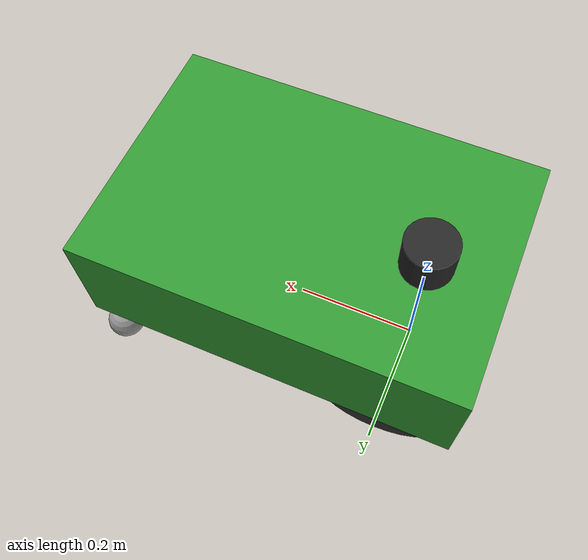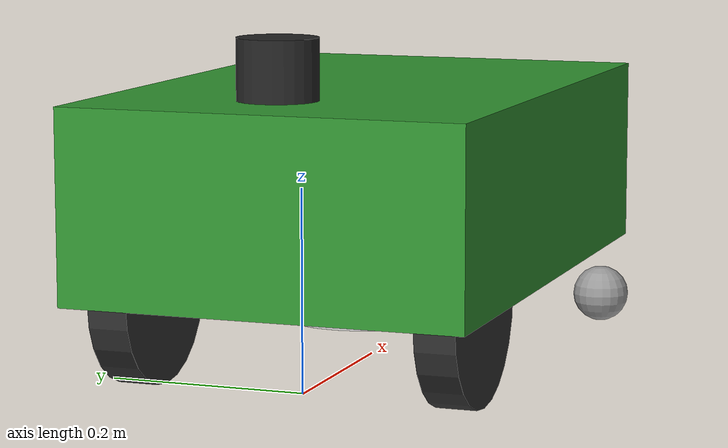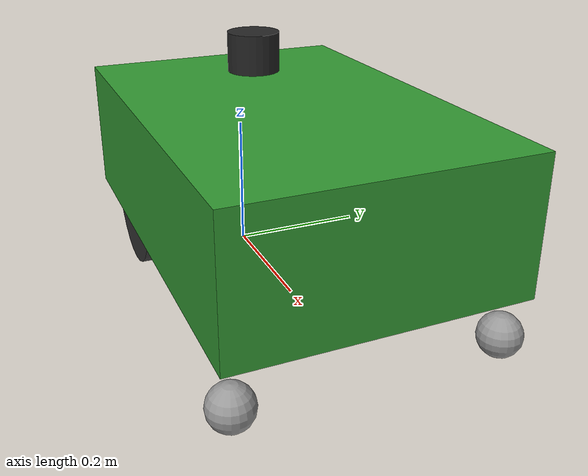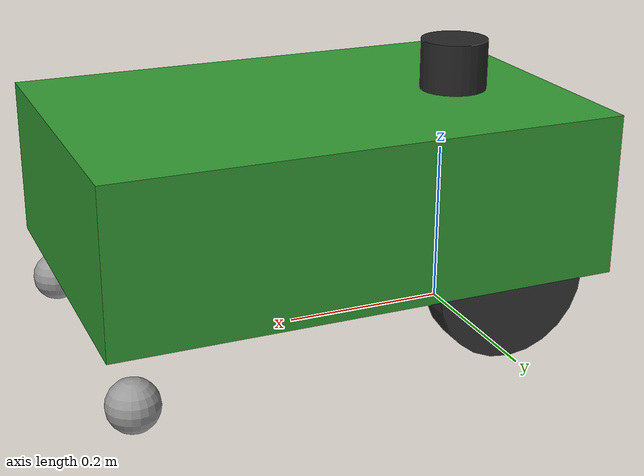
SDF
<?xml version="1.0"?>
<sdf version="1.9">
  <model name="mowgli_mower">
    <pose>0 0 0.093 0 0 0</pose>

    <!-- ==============================================================
         BASE LINK — chassis body
         ============================================================== -->
    <link name="base_link">
      <inertial>
        <mass>8.76</mass>
        <!-- Box inertia: m/12 * (y^2+z^2), etc. for 0.54×0.40×0.19 -->
        <inertia>
          <ixx>0.1459</ixx>
          <ixy>0</ixy>
          <ixz>0</ixz>
          <iyy>0.2891</iyy>
          <iyz>0</iyz>
          <izz>0.3796</izz>
        </inertia>
      </inertial>

      <!-- Chassis visual — green
           visibility_flags 0x0001: invisible to LiDAR (mask 0xFFFF0000) -->
      <visual name="chassis_visual">
        <pose>0.18 0 0.095 0 0 0</pose>
        <geometry>
          <box><size>0.60 0.40 0.19</size></box>
        </geometry>
        <material>
          <ambient>0.18 0.55 0.18 1</ambient>
          <diffuse>0.20 0.60 0.20 1</diffuse>
          <specular>0.1 0.3 0.1 1</specular>
        </material>
        <visibility_flags>0x0001</visibility_flags>
      </visual>

      <!-- Chassis collision -->
      <collision name="chassis_collision">
        <pose>0.18 0 0.095 0 0 0</pose>
        <geometry>
          <box><size>0.60 0.40 0.19</size></box>
        </geometry>
        <surface>
          <friction>
            <ode><mu>0.6</mu><mu2>0.6</mu2></ode>
          </friction>
        </surface>
      </collision>

      <!-- IMU sensor embedded in base_link -->
      <sensor name="imu_sensor" type="imu">
        <pose>0.18 0 0.095 0 0 0</pose>
        <always_on>true</always_on>
        <update_rate>100</update_rate>
        <visualize>false</visualize>
        <topic>/imu/data_raw</topic>
        <!-- Match the URDF frame for EKF TF lookups -->
        <gz_frame_id>imu_link</gz_frame_id>
        <imu>
          <angular_velocity>
            <x>
              <noise type="gaussian">
                <mean>0.0</mean><stddev>0.0</stddev>
                <bias_mean>0.0</bias_mean><bias_stddev>0.0</bias_stddev>
              </noise>
            </x>
            <y>
              <noise type="gaussian">
                <mean>0.0</mean><stddev>0.0</stddev>
                <bias_mean>0.0</bias_mean><bias_stddev>0.0</bias_stddev>
              </noise>
            </y>
            <z>
              <noise type="gaussian">
                <mean>0.0</mean><stddev>0.0</stddev>
                <bias_mean>0.0</bias_mean><bias_stddev>0.0</bias_stddev>
              </noise>
            </z>
          </angular_velocity>
          <linear_acceleration>
            <x>
              <noise type="gaussian">
                <mean>0.0</mean><stddev>0.0</stddev>
                <bias_mean>0.0</bias_mean><bias_stddev>0.0</bias_stddev>
              </noise>
            </x>
            <y>
              <noise type="gaussian">
                <mean>0.0</mean><stddev>0.0</stddev>
                <bias_mean>0.0</bias_mean><bias_stddev>0.0</bias_stddev>
              </noise>
            </y>
            <z>
              <noise type="gaussian">
                <mean>0.0</mean><stddev>0.0</stddev>
                <bias_mean>0.0</bias_mean><bias_stddev>0.0</bias_stddev>
              </noise>
            </z>
          </linear_acceleration>
          <orientation_reference_frame>
            <localization>GRAV_UP</localization>
          </orientation_reference_frame>
        </imu>
      </sensor>

      <!-- GPS / NavSat sensor -->
      <sensor name="navsat_sensor" type="navsat">
        <pose>0 0 0.20 0 0 0</pose>
        <always_on>true</always_on>
        <update_rate>5</update_rate>
        <topic>/gps/fix</topic>
        <!-- Match production frame for GPS pose processing -->
        <gz_frame_id>gps_link</gz_frame_id>
        <navsat>
          <position_sensing>
            <horizontal>
              <noise type="gaussian">
                <!-- RTK-fixed: ~2cm accuracy → ~1.8e-7 degrees.
                     Zeroed during fusion_graph debugging — restore
                     once baseline is clean. -->
                <mean>0.0</mean><stddev>0.0</stddev>
              </noise>
            </horizontal>
            <vertical>
              <noise type="gaussian">
                <mean>0.0</mean><stddev>0.0</stddev>
              </noise>
            </vertical>
          </position_sensing>
        </navsat>
      </sensor>
    </link>

    <link name="left_wheel">
      <pose>0 0.1625 0 0 0 0</pose>
      <inertial>
        <mass>0.5</mass>
        <inertia>
          <ixx>0.001148</ixx>
          <ixy>0</ixy>
          <ixz>0</ixz>
          <iyy>0.00216</iyy>
          <iyz>0</iyz>
          <izz>0.001148</izz>
        </inertia>
      </inertial>
      <visual name="visual">
        <pose>0 0 0 1.5708 0 0</pose>
        <geometry>
          <cylinder><radius>0.093</radius><length>0.04</length></cylinder>
        </geometry>
        <material>
          <ambient>0.2 0.2 0.2 1</ambient>
          <diffuse>0.2 0.2 0.2 1</diffuse>
        </material>
        <visibility_flags>0x0001</visibility_flags>
      </visual>
      <collision name="collision">
        <pose>0 0 0 1.5708 0 0</pose>
        <geometry>
          <cylinder><radius>0.093</radius><length>0.04</length></cylinder>
        </geometry>
        <surface>
          <friction>
            <ode>
              <mu>1.0</mu>
              <mu2>0.5</mu2>
              <slip1>0.0</slip1>
              <slip2>0.0</slip2>
            </ode>
            <torsional>
              <ode><slip>0.0</slip></ode>
            </torsional>
          </friction>
          <contact>
            <ode>
              <kp>1000000.0</kp>
              <kd>100.0</kd>
              <max_vel>0.1</max_vel>
              <min_depth>0.001</min_depth>
            </ode>
          </contact>
        </surface>
      </collision>
    </link>

    <joint name="left_wheel_joint" type="revolute">
      <parent>base_link</parent>
      <child>left_wheel</child>
      <axis>
        <xyz>0 1 0</xyz>
        <dynamics><damping>0.1</damping><friction>0.1</friction></dynamics>
        <limit><lower>-1e+16</lower><upper>1e+16</upper></limit>
      </axis>
    </joint>

    <link name="right_wheel">
      <pose>0 -0.1625 0 0 0 0</pose>
      <inertial>
        <mass>0.5</mass>
        <inertia>
          <!-- Same as left_wheel: r=0.093, h=0.04, axis Y rolling. -->
          <ixx>0.001148</ixx>
          <ixy>0</ixy>
          <ixz>0</ixz>
          <iyy>0.00216</iyy>
          <iyz>0</iyz>
          <izz>0.001148</izz>
        </inertia>
      </inertial>
      <visual name="visual">
        <pose>0 0 0 1.5708 0 0</pose>
        <geometry>
          <cylinder><radius>0.093</radius><length>0.04</length></cylinder>
        </geometry>
        <material>
          <ambient>0.2 0.2 0.2 1</ambient>
          <diffuse>0.2 0.2 0.2 1</diffuse>
        </material>
        <visibility_flags>0x0001</visibility_flags>
      </visual>
      <collision name="collision">
        <pose>0 0 0 1.5708 0 0</pose>
        <geometry>
          <cylinder><radius>0.093</radius><length>0.04</length></cylinder>
        </geometry>
        <surface>
          <friction>
            <ode>
              <mu>1.0</mu>
              <mu2>0.5</mu2>
              <slip1>0.0</slip1>
              <slip2>0.0</slip2>
            </ode>
            <torsional>
              <ode><slip>0.0</slip></ode>
            </torsional>
          </friction>
          <contact>
            <ode>
              <kp>1000000.0</kp>
              <kd>100.0</kd>
              <max_vel>0.1</max_vel>
              <min_depth>0.001</min_depth>
            </ode>
          </contact>
        </surface>
      </collision>
    </link>

    <joint name="right_wheel_joint" type="revolute">
      <parent>base_link</parent>
      <child>right_wheel</child>
      <axis>
        <xyz>0 1 0</xyz>
        <dynamics><damping>0.1</damping><friction>0.1</friction></dynamics>
        <limit><lower>-1e+16</lower><upper>1e+16</upper></limit>
      </axis>
    </joint>

    <link name="front_left_caster">
      <pose>0.45 0.18 -0.063 0 0 0</pose>
      <inertial>
        <mass>0.2</mass>
        <!-- Sphere: I = 2/5 * m * r^2 = 2/5 * 0.2 * 0.03^2 -->
        <inertia>
          <ixx>0.000072</ixx>
          <ixy>0</ixy>
          <ixz>0</ixz>
          <iyy>0.000072</iyy>
          <iyz>0</iyz>
          <izz>0.000072</izz>
        </inertia>
      </inertial>
      <visual name="visual">
        <geometry>
          <sphere><radius>0.03</radius></sphere>
        </geometry>
        <material>
          <ambient>0.5 0.5 0.5 1</ambient>
          <diffuse>0.6 0.6 0.6 1</diffuse>
        </material>
        <visibility_flags>0x0001</visibility_flags>
      </visual>
      <collision name="collision">
        <geometry>
          <sphere><radius>0.03</radius></sphere>
        </geometry>
        <surface>
          <friction>
            <ode>
              <mu>0.01</mu>
              <mu2>0.01</mu2>
            </ode>
          </friction>
          <contact>
            <ode>
              <kp>1000000.0</kp>
              <kd>100.0</kd>
              <max_vel>1.0</max_vel>
              <min_depth>0.001</min_depth>
            </ode>
          </contact>
        </surface>
      </collision>
    </link>

    <joint name="front_left_caster_joint" type="ball">
      <parent>base_link</parent>
      <child>front_left_caster</child>
    </joint>

    <link name="front_right_caster">
      <pose>0.45 -0.18 -0.063 0 0 0</pose>
      <inertial>
        <mass>0.2</mass>
        <inertia>
          <ixx>0.000072</ixx>
          <ixy>0</ixy>
          <ixz>0</ixz>
          <iyy>0.000072</iyy>
          <iyz>0</iyz>
          <izz>0.000072</izz>
        </inertia>
      </inertial>
      <visual name="visual">
        <geometry>
          <sphere><radius>0.03</radius></sphere>
        </geometry>
        <material>
          <ambient>0.5 0.5 0.5 1</ambient>
          <diffuse>0.6 0.6 0.6 1</diffuse>
        </material>
        <visibility_flags>0x0001</visibility_flags>
      </visual>
      <collision name="collision">
        <geometry>
          <sphere><radius>0.03</radius></sphere>
        </geometry>
        <surface>
          <friction>
            <ode>
              <mu>0.01</mu>
              <mu2>0.01</mu2>
            </ode>
          </friction>
          <contact>
            <ode>
              <kp>1000000.0</kp>
              <kd>100.0</kd>
              <max_vel>1.0</max_vel>
              <min_depth>0.001</min_depth>
            </ode>
          </contact>
        </surface>
      </collision>
    </link>

    <joint name="front_right_caster_joint" type="ball">
      <parent>base_link</parent>
      <child>front_right_caster</child>
    </joint>

    <link name="blade_link">
      <pose>0.18 0 -0.043 0 0 0</pose>
      <inertial>
        <mass>0.3</mass>
        <inertia>
          <ixx>0.000610</ixx>
          <ixy>0</ixy>
          <ixz>0</ixz>
          <iyy>0.000610</iyy>
          <iyz>0</iyz>
          <izz>0.001215</izz>
        </inertia>
      </inertial>
      <visual name="visual">
        <geometry>
          <cylinder><radius>0.09</radius><length>0.01</length></cylinder>
        </geometry>
        <material>
          <ambient>0.75 0.75 0.75 1</ambient>
          <diffuse>0.80 0.80 0.80 1</diffuse>
          <specular>0.5 0.5 0.5 1</specular>
        </material>
        <visibility_flags>0x0001</visibility_flags>
      </visual>
      <!-- No collision — blade is virtual in simulation -->
    </link>

    <joint name="blade_joint" type="fixed">
      <parent>base_link</parent>
      <child>blade_link</child>
    </joint>

    <link name="laser_link">
      <pose>0.0 0.024 0.22 0 0 3.1408</pose>
      <inertial>
        <mass>0.18</mass>
        <inertia>
          <ixx>0.0001</ixx><ixy>0</ixy><ixz>0</ixz>
          <iyy>0.0001</iyy><iyz>0</iyz><izz>0.0001</izz>
        </inertia>
      </inertial>
      <visual name="visual">
        <geometry>
          <cylinder><radius>0.04</radius><length>0.06</length></cylinder>
        </geometry>
        <material>
          <ambient>0.15 0.15 0.15 1</ambient>
          <diffuse>0.15 0.15 0.15 1</diffuse>
        </material>
        <visibility_flags>0x0001</visibility_flags>
      </visual>
      <collision name="collision">
        <geometry>
          <cylinder><radius>0.04</radius><length>0.06</length></cylinder>
        </geometry>
      </collision>

      <!-- 2-D LiDAR sensor — 360 deg, 720 samples, 10 Hz -->
      <sensor name="lidar_sensor" type="gpu_lidar">
        <always_on>true</always_on>
        <update_rate>10</update_rate>
        <visualize>false</visualize>
        <visibility_mask>0xFFFF0000</visibility_mask>
        <topic>/scan</topic>
        <!-- Match the URDF frame so SLAM/costmap TF lookups work -->
        <gz_frame_id>lidar_link</gz_frame_id>
        <lidar>
          <scan>
            <horizontal>
              <samples>720</samples>
              <resolution>1</resolution>
              <min_angle>-3.14159265</min_angle>
              <max_angle>3.14159265</max_angle>
            </horizontal>
            <vertical>
              <samples>1</samples>
              <resolution>1</resolution>
              <min_angle>0</min_angle>
              <max_angle>0</max_angle>
            </vertical>
          </scan>
          <range>
            <!-- Reduced from 0.35m: visibility_mask now filters self-reflections -->
            <min>0.10</min>
            <max>12.0</max>
            <resolution>0.01</resolution>
          </range>
          <noise>
            <!-- LiDAR range noise zeroed during fusion_graph debugging
                 (was 0.025 m). Restore once baseline is clean. -->
            <type>gaussian</type>
            <mean>0.0</mean>
            <stddev>0.0</stddev>
          </noise>
        </lidar>
      </sensor>
    </link>

    <joint name="laser_joint" type="fixed">
      <parent>base_link</parent>
      <child>laser_link</child>
    </joint>

    <plugin
        filename="gz-sim-diff-drive-system"
        name="gz::sim::systems::DiffDrive">
      <left_joint>left_wheel_joint</left_joint>
      <right_joint>right_wheel_joint</right_joint>
      <wheel_separation>0.325</wheel_separation>
      <wheel_radius>0.093</wheel_radius>
      <odom_publish_frequency>50</odom_publish_frequency>
      <topic>/cmd_vel</topic>
      <odom_topic>/odom</odom_topic>
      <tf_topic>/tf</tf_topic>
      <frame_id>odom</frame_id>
      <child_frame_id>base_link</child_frame_id>
      <min_velocity>-1.0</min_velocity>
      <max_velocity>1.0</max_velocity>
      <min_acceleration>-3.0</min_acceleration>
      <max_acceleration>3.0</max_acceleration>
    </plugin>

    <!-- Joint state publisher — broadcasts wheel joint positions -->
    <plugin
        filename="gz-sim-joint-state-publisher-system"
        name="gz::sim::systems::JointStatePublisher">
      <topic>/joint_states</topic>
      <joint_name>left_wheel_joint</joint_name>
      <joint_name>right_wheel_joint</joint_name>
    </plugin>

  </model>
</sdf>
